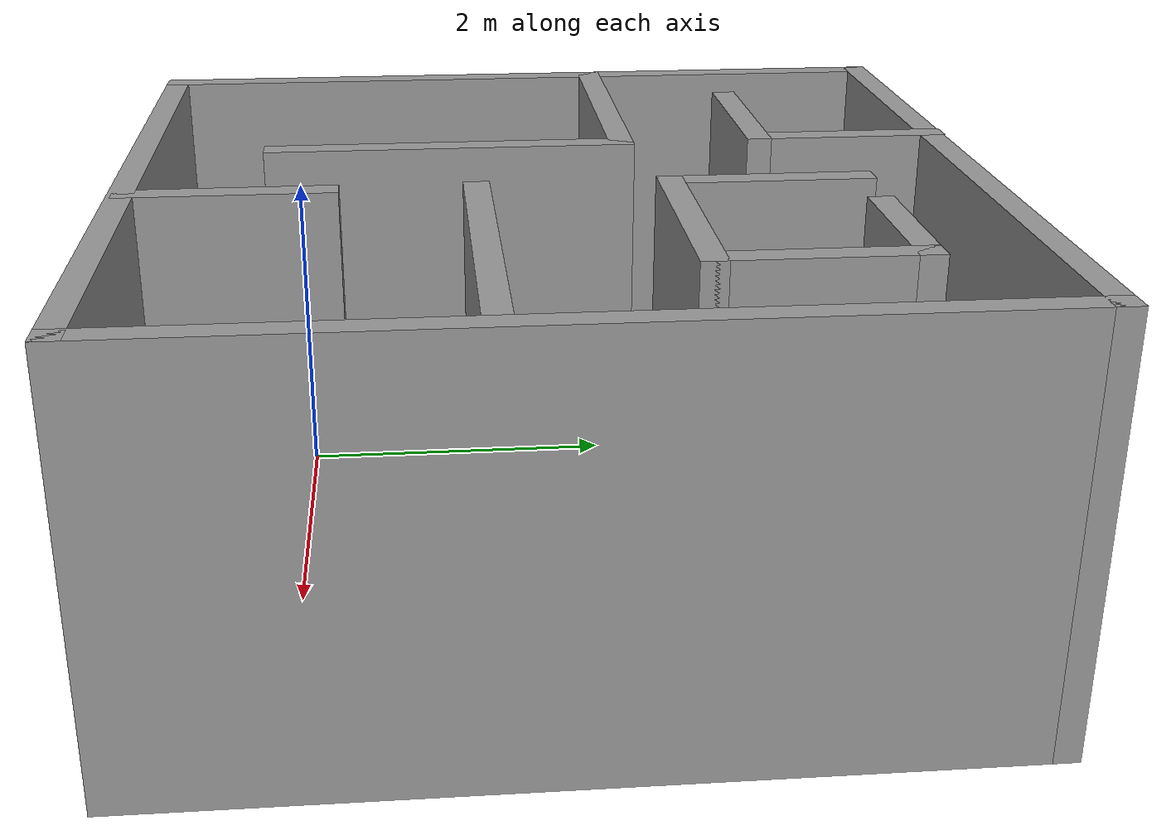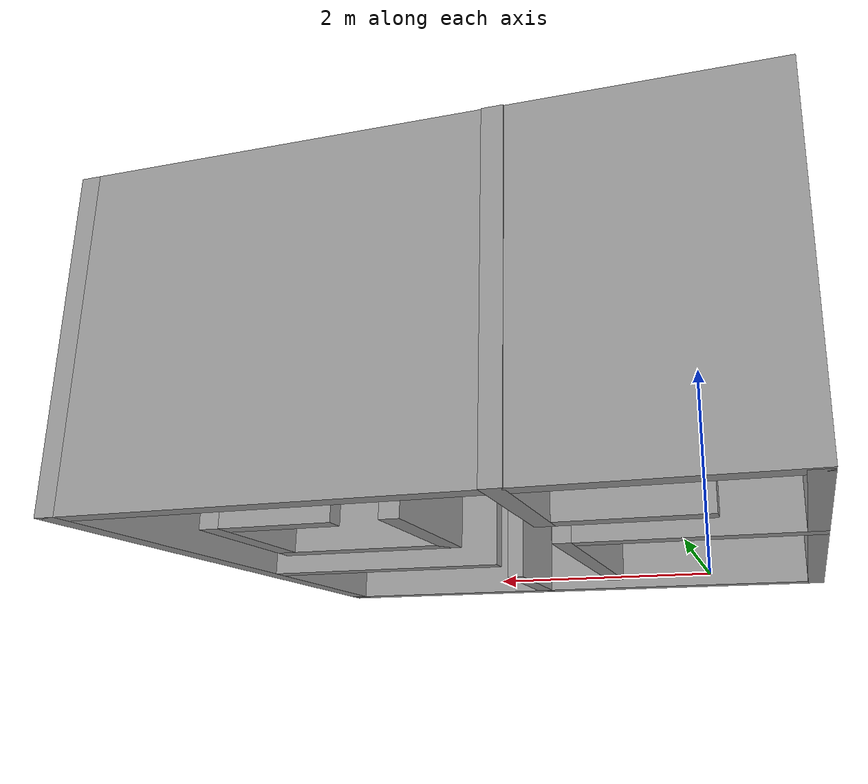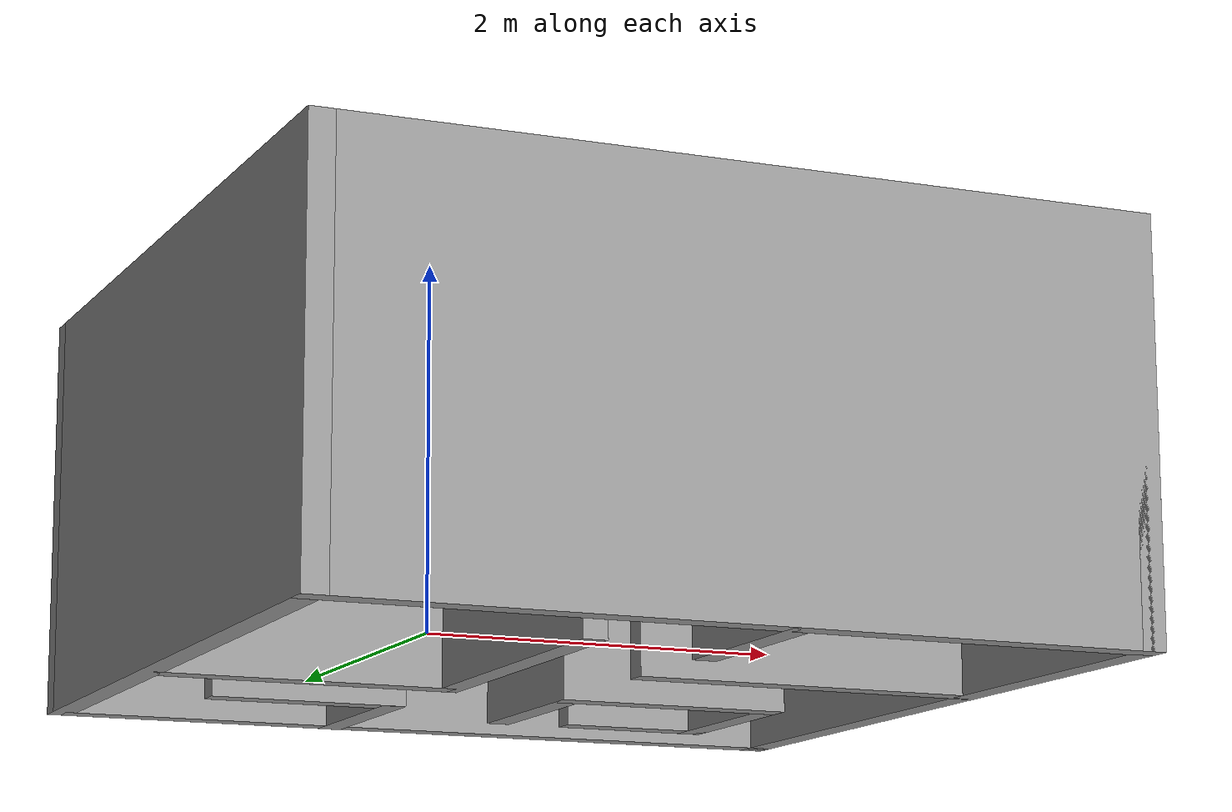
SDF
<?xml version='1.0'?>
<sdf version='1.7'>
  <model name='multi_maze'>
    <pose>1.48062 1.56217 0 0 -0 0</pose>
    <link name='Wall_19'>
      <collision name='Wall_19_Collision'>
        <geometry>
          <box>
            <size>5 0.15 2.5</size>
          </box>
        </geometry>
        <pose>0 0 1.25 0 -0 0</pose>
      </collision>
      <visual name='Wall_19_Visual'>
        <pose>0 0 1.25 0 -0 0</pose>
        <geometry>
          <box>
            <size>5 0.15 2.5</size>
          </box>
        </geometry>
        <material>
          <script>
            <uri>file://media/materials/scripts/gazebo.material</uri>
            <name>Gazebo/Grey</name>
          </script>
          <ambient>1 1 1 1</ambient>
        </material>
        <meta>
          <layer>0</layer>
        </meta>
      </visual>
      <pose>-0 -2.42994 0 0 -0 0</pose>
    </link>
    <link name='Wall_20'>
      <collision name='Wall_20_Collision'>
        <geometry>
          <box>
            <size>5 0.15 2.5</size>
          </box>
        </geometry>
        <pose>0 0 1.25 0 -0 0</pose>
      </collision>
      <visual name='Wall_20_Visual'>
        <pose>0 0 1.25 0 -0 0</pose>
        <geometry>
          <box>
            <size>5 0.15 2.5</size>
          </box>
        </geometry>
        <material>
          <script>
            <uri>file://media/materials/scripts/gazebo.material</uri>
            <name>Gazebo/Grey</name>
          </script>
          <ambient>1 1 1 1</ambient>
        </material>
        <meta>
          <layer>0</layer>
        </meta>
      </visual>
      <pose>2.425 -0.004941 0 0 -0 1.5708</pose>
    </link>
    <link name='Wall_21'>
      <collision name='Wall_21_Collision'>
        <geometry>
          <box>
            <size>5 0.15 2.5</size>
          </box>
        </geometry>
        <pose>0 0 1.25 0 -0 0</pose>
      </collision>
      <visual name='Wall_21_Visual'>
        <pose>0 0 1.25 0 -0 0</pose>
        <geometry>
          <box>
            <size>5 0.15 2.5</size>
          </box>
        </geometry>
        <material>
          <script>
            <uri>file://media/materials/scripts/gazebo.material</uri>
            <name>Gazebo/Grey</name>
          </script>
          <ambient>1 1 1 1</ambient>
        </material>
        <meta>
          <layer>0</layer>
        </meta>
      </visual>
      <pose>-0 2.42006 0 0 -0 3.14159</pose>
    </link>
    <link name='Wall_22'>
      <collision name='Wall_22_Collision'>
        <geometry>
          <box>
            <size>5 0.15 2.5</size>
          </box>
        </geometry>
        <pose>0 0 1.25 0 -0 0</pose>
      </collision>
      <visual name='Wall_22_Visual'>
        <pose>0 0 1.25 0 -0 0</pose>
        <geometry>
          <box>
            <size>5 0.15 2.5</size>
          </box>
        </geometry>
        <material>
          <script>
            <uri>file://media/materials/scripts/gazebo.material</uri>
            <name>Gazebo/Grey</name>
          </script>
          <ambient>1 1 1 1</ambient>
        </material>
        <meta>
          <layer>0</layer>
        </meta>
      </visual>
      <pose>-2.425 -0.004941 0 0 -0 -1.5708</pose>
    </link>
    <link name='Wall_24'>
      <collision name='Wall_24_Collision'>
        <geometry>
          <box>
            <size>2 0.15 2.5</size>
          </box>
        </geometry>
        <pose>0 0 1.25 0 -0 0</pose>
      </collision>
      <visual name='Wall_24_Visual'>
        <pose>0 0 1.25 0 -0 0</pose>
        <geometry>
          <box>
            <size>2 0.15 2.5</size>
          </box>
        </geometry>
        <material>
          <script>
            <uri>file://media/materials/scripts/gazebo.material</uri>
            <name>Gazebo/Grey</name>
          </script>
          <ambient>1 1 1 1</ambient>
        </material>
        <meta>
          <layer>0</layer>
        </meta>
      </visual>
      <pose>-1.49833 0.468012 0 0 -0 0</pose>
    </link>
    <link name='Wall_25'>
      <collision name='Wall_25_Collision'>
        <geometry>
          <box>
            <size>2.25 0.15 2.5</size>
          </box>
        </geometry>
        <pose>0 0 1.25 0 -0 0</pose>
      </collision>
      <visual name='Wall_25_Visual'>
        <pose>0 0 1.25 0 -0 0</pose>
        <geometry>
          <box>
            <size>2.25 0.15 2.5</size>
          </box>
        </geometry>
        <material>
          <script>
            <uri>file://media/materials/scripts/gazebo.material</uri>
            <name>Gazebo/Grey</name>
          </script>
          <ambient>1 1 1 1</ambient>
        </material>
        <meta>
          <layer>0</layer>
        </meta>
      </visual>
      <pose>-0.573326 -0.581988 0 0 -0 -1.5708</pose>
    </link>
    <link name='Wall_27'>
      <collision name='Wall_27_Collision'>
        <geometry>
          <box>
            <size>1.25 0.15 2.5</size>
          </box>
        </geometry>
        <pose>0 0 1.25 0 -0 0</pose>
      </collision>
      <visual name='Wall_27_Visual'>
        <pose>0 0 1.25 0 -0 0</pose>
        <geometry>
          <box>
            <size>1.25 0.15 2.5</size>
          </box>
        </geometry>
        <material>
          <script>
            <uri>file://media/materials/scripts/gazebo.material</uri>
            <name>Gazebo/Grey</name>
          </script>
          <ambient>1 1 1 1</ambient>
        </material>
        <meta>
          <layer>0</layer>
        </meta>
      </visual>
      <pose>-0.628693 1.87994 0 0 -0 -1.5708</pose>
    </link>
    <link name='Wall_28'>
      <collision name='Wall_28_Collision'>
        <geometry>
          <box>
            <size>1.25 0.15 2.5</size>
          </box>
        </geometry>
        <pose>0 0 1.25 0 -0 0</pose>
      </collision>
      <visual name='Wall_28_Visual'>
        <pose>0 0 1.25 0 -0 0</pose>
        <geometry>
          <box>
            <size>1.25 0.15 2.5</size>
          </box>
        </geometry>
        <material>
          <script>
            <uri>file://media/materials/scripts/gazebo.material</uri>
            <name>Gazebo/Grey</name>
          </script>
          <ambient>1 1 1 1</ambient>
        </material>
        <meta>
          <layer>0</layer>
        </meta>
      </visual>
      <pose>-1.17869 1.32994 0 0 -0 3.14159</pose>
    </link>
    <link name='Wall_30'>
      <collision name='Wall_30_Collision'>
        <geometry>
          <box>
            <size>2.25 0.15 2.5</size>
          </box>
        </geometry>
        <pose>0 0 1.25 0 -0 0</pose>
      </collision>
      <visual name='Wall_30_Visual'>
        <pose>0 0 1.25 0 -0 0</pose>
        <geometry>
          <box>
            <size>2.25 0.15 2.5</size>
          </box>
        </geometry>
        <material>
          <script>
            <uri>file://media/materials/scripts/gazebo.material</uri>
            <name>Gazebo/Grey</name>
          </script>
          <ambient>1 1 1 1</ambient>
        </material>
        <meta>
          <layer>0</layer>
        </meta>
      </visual>
      <pose>1.34904 -0.459722 0 0 -0 0</pose>
    </link>
    <link name='Wall_32'>
      <collision name='Wall_32_Collision'>
        <geometry>
          <box>
            <size>1.25 0.15 2.5</size>
          </box>
        </geometry>
        <pose>0 0 1.25 0 -0 0</pose>
      </collision>
      <visual name='Wall_32_Visual'>
        <pose>0 0 1.25 0 -0 0</pose>
        <geometry>
          <box>
            <size>1.25 0.15 2.5</size>
          </box>
        </geometry>
        <material>
          <script>
            <uri>file://media/materials/scripts/gazebo.material</uri>
            <name>Gazebo/Grey</name>
          </script>
          <ambient>1 1 1 1</ambient>
        </material>
        <meta>
          <layer>0</layer>
        </meta>
      </visual>
      <pose>0.299041 -1.85644 0 0 -0 1.5708</pose>
    </link>
    <link name='Wall_34'>
      <collision name='Wall_34_Collision'>
        <geometry>
          <box>
            <size>1.25 0.15 2.5</size>
          </box>
        </geometry>
        <pose>0 0 1.25 0 -0 0</pose>
      </collision>
      <visual name='Wall_34_Visual'>
        <pose>0 0 1.25 0 -0 0</pose>
        <geometry>
          <box>
            <size>1.25 0.15 2.5</size>
          </box>
        </geometry>
        <material>
          <script>
            <uri>file://media/materials/scripts/gazebo.material</uri>
            <name>Gazebo/Grey</name>
          </script>
          <ambient>1 1 1 1</ambient>
        </material>
        <meta>
          <layer>0</layer>
        </meta>
      </visual>
      <pose>0.283832 1.19555 0 0 -0 -1.5708</pose>
    </link>
    <link name='Wall_35'>
      <collision name='Wall_35_Collision'>
        <geometry>
          <box>
            <size>1.5 0.15 2.5</size>
          </box>
        </geometry>
        <pose>0 0 1.25 0 -0 0</pose>
      </collision>
      <visual name='Wall_35_Visual'>
        <pose>0 0 1.25 0 -0 0</pose>
        <geometry>
          <box>
            <size>1.5 0.15 2.5</size>
          </box>
        </geometry>
        <material>
          <script>
            <uri>file://media/materials/scripts/gazebo.material</uri>
            <name>Gazebo/Grey</name>
          </script>
          <ambient>1 1 1 1</ambient>
        </material>
        <meta>
          <layer>0</layer>
        </meta>
      </visual>
      <pose>0.958832 0.645547 0 0 -0 0</pose>
    </link>
    <link name='Wall_36'>
      <collision name='Wall_36_Collision'>
        <geometry>
          <box>
            <size>1.25 0.15 2.5</size>
          </box>
        </geometry>
        <pose>0 0 1.25 0 -0 0</pose>
      </collision>
      <visual name='Wall_36_Visual'>
        <pose>0 0 1.25 0 -0 0</pose>
        <geometry>
          <box>
            <size>1.25 0.15 2.5</size>
          </box>
        </geometry>
        <material>
          <script>
            <uri>file://media/materials/scripts/gazebo.material</uri>
            <name>Gazebo/Grey</name>
          </script>
          <ambient>1 1 1 1</ambient>
        </material>
        <meta>
          <layer>0</layer>
        </meta>
      </visual>
      <pose>1.63383 1.19555 0 0 -0 1.5708</pose>
    </link>
    <link name='Wall_37'>
      <collision name='Wall_37_Collision'>
        <geometry>
          <box>
            <size>1 0.15 2.5</size>
          </box>
        </geometry>
        <pose>0 0 1.25 0 -0 0</pose>
      </collision>
      <visual name='Wall_37_Visual'>
        <pose>0 0 1.25 0 -0 0</pose>
        <geometry>
          <box>
            <size>1 0.15 2.5</size>
          </box>
        </geometry>
        <material>
          <script>
            <uri>file://media/materials/scripts/gazebo.material</uri>
            <name>Gazebo/Grey</name>
          </script>
          <ambient>1 1 1 1</ambient>
        </material>
        <meta>
          <layer>0</layer>
        </meta>
      </visual>
      <pose>1.20883 1.74555 0 0 -0 3.14159</pose>
    </link>
    <static>1</static>
  </model>
</sdf>
